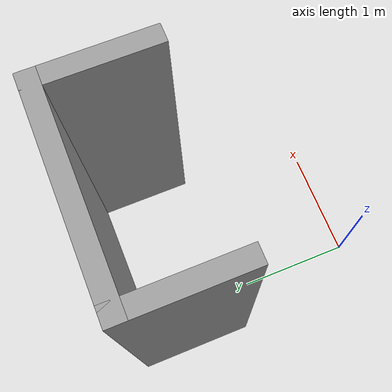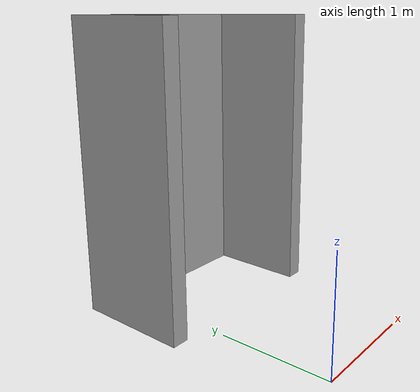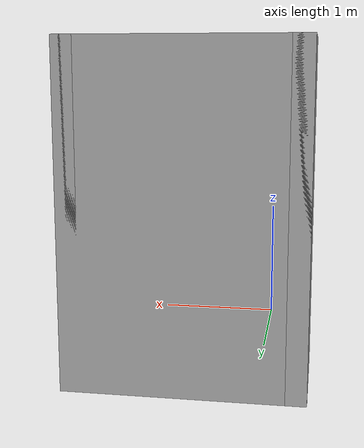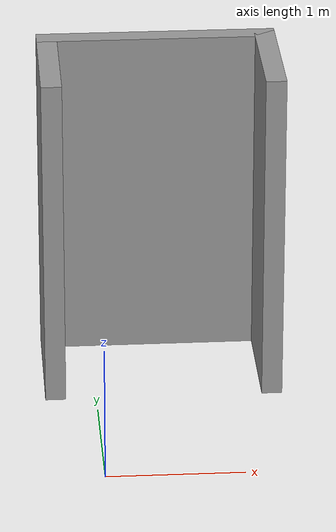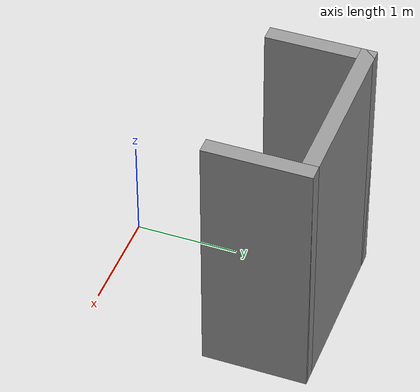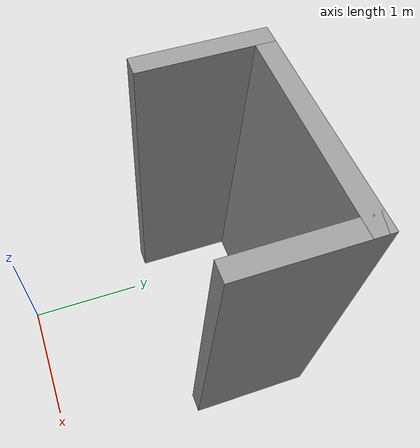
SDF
<?xml version='1.0'?>
<sdf version='1.6'>
  <model name='simple_wall'>
    <pose frame=''>0.496846 1.67978 0 0 -0 0</pose>
    <link name='Wall_34'>
      <collision name='Wall_34_Collision'>
        <geometry>
          <box>
            <size>1 0.15 2.5</size>
          </box>
        </geometry>
        <pose frame=''>0 0 1.25 0 -0 0</pose>
      </collision>
      <visual name='Wall_34_Visual'>
        <pose frame=''>0 0 1.25 0 -0 0</pose>
        <geometry>
          <box>
            <size>1 0.15 2.5</size>
          </box>
        </geometry>
        <material>
          <script>
            <uri>file://media/materials/scripts/gazebo.material</uri>
            <name>Gazebo/Grey</name>
          </script>
          <ambient>1 1 1 1</ambient>
        </material>
        <meta>
          <layer>0</layer>
        </meta>
      </visual>
      <pose frame=''>-0.8 0 0 0 -0 1.5708</pose>
    </link>
    <link name='Wall_35'>
      <collision name='Wall_35_Collision'>
        <geometry>
          <box>
            <size>1.75 0.15 2.5</size>
          </box>
        </geometry>
        <pose frame=''>0 0 1.25 0 -0 0</pose>
      </collision>
      <visual name='Wall_35_Visual'>
        <pose frame=''>0 0 1.25 0 -0 0</pose>
        <geometry>
          <box>
            <size>1.75 0.15 2.5</size>
          </box>
        </geometry>
        <material>
          <script>
            <uri>file://media/materials/scripts/gazebo.material</uri>
            <name>Gazebo/Grey</name>
          </script>
          <ambient>1 1 1 1</ambient>
        </material>
        <meta>
          <layer>0</layer>
        </meta>
      </visual>
      <pose frame=''>0 0.425 0 0 -0 0</pose>
    </link>
    <link name='Wall_36'>
      <collision name='Wall_36_Collision'>
        <geometry>
          <box>
            <size>1 0.15 2.5</size>
          </box>
        </geometry>
        <pose frame=''>0 0 1.25 0 -0 0</pose>
      </collision>
      <visual name='Wall_36_Visual'>
        <pose frame=''>0 0 1.25 0 -0 0</pose>
        <geometry>
          <box>
            <size>1 0.15 2.5</size>
          </box>
        </geometry>
        <material>
          <script>
            <uri>file://media/materials/scripts/gazebo.material</uri>
            <name>Gazebo/Grey</name>
          </script>
          <ambient>1 1 1 1</ambient>
        </material>
        <meta>
          <layer>0</layer>
        </meta>
      </visual>
      <pose frame=''>0.8 0 0 0 -0 -1.5708</pose>
    </link>
    <static>1</static>
  </model>
</sdf>
